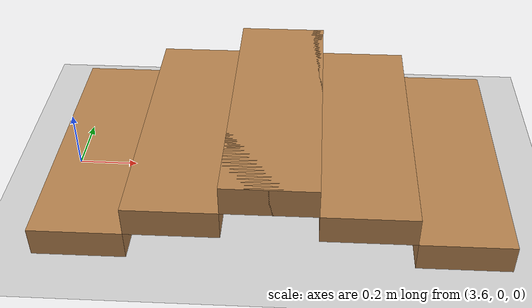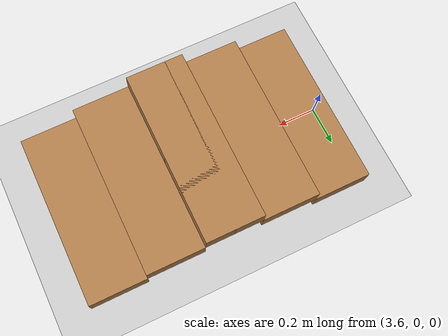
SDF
<sdf version="1.6">
 <world name="default">
  <light name="sun" type="directional">
   <pose>0 0 10 0 -0 0</pose>
   <diffuse>0.8 0.8 0.8 1</diffuse>
   <specular>0.2 0.2 0.2 1</specular>
   <attenuation>
    <range>1000</range>
    <constant>0.9</constant>
    <linear>0.01</linear>
    <quadratic>0.001</quadratic>
   </attenuation>
   <direction>-0.5 0.1 -0.9</direction>
  </light>
  <model name="ground_plane">
   <static>1</static>
   <link name="link">
    <collision name="collision">
     <geometry><plane><normal>0 0 1</normal><size>100 100</size></plane></geometry>
     <surface><friction><ode><mu>100</mu><mu2>50</mu2></ode></friction></surface>
    </collision>
    <visual name="visual">
     <cast_shadows>0</cast_shadows>
     <geometry><plane><normal>0 0 1</normal><size>100 100</size></plane></geometry>
     <material>
      <script><uri>file://media/materials/scripts/gazebo.material</uri><name>Gazebo/Grey</name></script>
     </material>
    </visual>
   </link>
  </model>
  <gravity>0 0 -9.8</gravity>
  <magnetic_field>6e-06 2.3e-05 -4.2e-05</magnetic_field>
  <atmosphere type="adiabatic"/>
  <physics name="default_physics" default="0" type="ode">
   <max_step_size>0.001</max_step_size>
   <real_time_factor>1</real_time_factor>
   <real_time_update_rate>1000</real_time_update_rate>
  </physics>
  <scene><ambient>0.4 0.4 0.4 1</ambient><background>0.7 0.7 0.7 1</background><shadows>1</shadows></scene>
  <audio><device>default</device></audio>
  <spherical_coordinates>
   <surface_model>EARTH_WGS84</surface_model>
   <latitude_deg>0</latitude_deg>
   <longitude_deg>0</longitude_deg>
   <elevation>0</elevation>
   <heading_deg>0</heading_deg>
  </spherical_coordinates>
  <model name="quad_stairs">
   <pose>4.3 0 0 0 -0 0</pose>
   <link name="Stairs_2">
    <visual name="Stairs_2_Visual_0">
     <pose>-0.6 -0 0.05 0 -0 1.5708</pose>
     <geometry><box><size>0.9 0.3 0.1</size></box></geometry>
     <material>
      <script><uri>file://media/materials/scripts/gazebo.material</uri><name>Gazebo/Wood</name></script>
      <ambient>1 1 1 1</ambient>
     </material>
     <meta><layer>0</layer></meta>
    </visual>
    <collision name="Stairs_2_Collision_0">
     <geometry><box><size>0.9 0.3 0.1</size></box></geometry>
     <pose>-0.6 -0 0.05 0 -0 1.5708</pose>
    </collision>
    <visual name="Stairs_2_Visual_1">
     <pose>-0.3 0 0.15 0 -0 1.5708</pose>
     <geometry><box><size>0.9 0.3 0.1</size></box></geometry>
     <material>
      <script><uri>file://media/materials/scripts/gazebo.material</uri><name>Gazebo/Wood</name></script>
      <ambient>1 1 1 1</ambient>
     </material>
     <meta><layer>0</layer></meta>
    </visual>
    <collision name="Stairs_2_Collision_1">
     <geometry><box><size>0.9 0.3 0.1</size></box></geometry>
     <pose>-0.3 0 0.15 0 -0 1.5708</pose>
    </collision>
    <visual name="Stairs_2_Visual_2">
     <pose>0 0 0.25 0 -0 1.5708</pose>
     <geometry><box><size>0.9 0.3 0.1</size></box></geometry>
     <material>
      <script><uri>file://media/materials/scripts/gazebo.material</uri><name>Gazebo/Wood</name></script>
      <ambient>1 1 1 1</ambient>
     </material>
     <meta><layer>0</layer></meta>
    </visual>
    <collision name="Stairs_2_Collision_2">
     <geometry><box><size>0.9 0.3 0.1</size></box></geometry>
     <pose>0 0 0.25 0 -0 1.5708</pose>
    </collision>
   </link>
   <link name="Stairs_3">
    <visual name="Stairs_3_Visual_0">
     <pose>0.6 -0 0.05 0 -0 -1.5708</pose>
     <geometry><box><size>0.9 0.3 0.1</size></box></geometry>
     <material>
      <script><uri>file://media/materials/scripts/gazebo.material</uri><name>Gazebo/Wood</name></script>
      <ambient>1 1 1 1</ambient>
     </material>
     <meta><layer>0</layer></meta>
    </visual>
    <collision name="Stairs_3_Collision_0">
     <geometry><box><size>0.9 0.3 0.1</size></box></geometry>
     <pose>0.6 -0 0.05 0 -0 -1.5708</pose>
    </collision>
    <visual name="Stairs_3_Visual_1">
     <pose>0.3 0 0.15 0 -0 -1.5708</pose>
     <geometry><box><size>0.9 0.3 0.1</size></box></geometry>
     <material>
      <script><uri>file://media/materials/scripts/gazebo.material</uri><name>Gazebo/Wood</name></script>
      <ambient>1 1 1 1</ambient>
     </material>
     <meta><layer>0</layer></meta>
    </visual>
    <collision name="Stairs_3_Collision_1">
     <geometry><box><size>0.9 0.3 0.1</size></box></geometry>
     <pose>0.3 0 0.15 0 -0 -1.5708</pose>
    </collision>
    <visual name="Stairs_3_Visual_2">
     <pose>-0 0 0.25 0 -0 -1.5708</pose>
     <geometry><box><size>0.9 0.3 0.1</size></box></geometry>
     <material>
      <script><uri>file://media/materials/scripts/gazebo.material</uri><name>Gazebo/Wood</name></script>
      <ambient>1 1 1 1</ambient>
     </material>
     <meta><layer>0</layer></meta>
    </visual>
    <collision name="Stairs_3_Collision_2">
     <geometry><box><size>0.9 0.3 0.1</size></box></geometry>
     <pose>-0 0 0.25 0 -0 -1.5708</pose>
    </collision>
   </link>
   <static>1</static>
  </model>
 </world>
</sdf>
